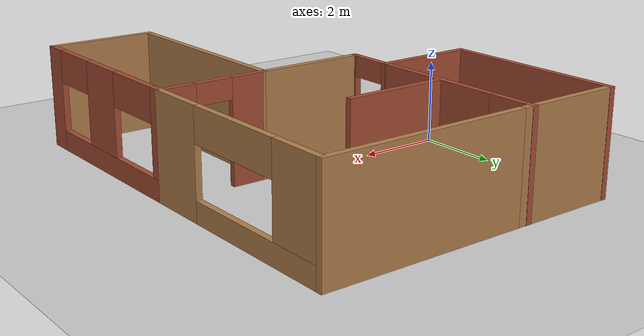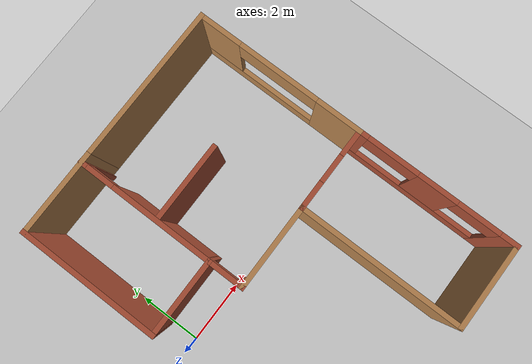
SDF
<sdf version="1.7">
 <world name="default">
  <model name="ground_plane">
   <static>1</static>
   <link name="link">
    <collision name="collision">
     <geometry><plane><normal>0 0 1</normal><size>100 100</size></plane></geometry>
     <surface>
      <contact><collide_bitmask>65535</collide_bitmask></contact>
      <friction><ode><mu>100</mu><mu2>50</mu2></ode></friction>
     </surface>
    </collision>
    <visual name="visual">
     <cast_shadows>0</cast_shadows>
     <geometry><plane><normal>0 0 1</normal><size>100 100</size></plane></geometry>
     <material>
      <script><uri>file://media/materials/scripts/gazebo.material</uri><name>Gazebo/Grey</name></script>
     </material>
    </visual>
   </link>
  </model>
  <model name="turtlebot3_house">
   <link name="Wall_101">
    <pose>-0.05 3.1 0 0 0 -1.5708</pose>
    <visual name="Wall_101_Visual">
     <pose>0 0 1.25 0 -0 0</pose>
     <geometry><box><size>4.5 0.15 2.5</size></box></geometry>
     <material>
      <script><uri>file://media/materials/scripts/gazebo.material</uri><name>Gazebo/Bricks</name></script>
      <ambient>1 1 1 1</ambient>
      <diffuse>1 1 1 1</diffuse>
      <specular>0.2 0.2 0.2 1</specular>
      <emissive>0 0 0 1</emissive>
     </material>
    </visual>
    <collision name="Wall_101_Collision">
     <pose>0 0 1.25 0 -0 0</pose>
     <geometry><box><size>4.5 0.15 2.5</size></box></geometry>
     <surface>
      <friction>
       <ode><mu>1</mu><mu2>1</mu2><fdir1>0 0 0</fdir1><slip1>0</slip1><slip2>0</slip2></ode>
       <torsional>
        <coefficient>1</coefficient>
        <patch_radius>0</patch_radius>
        <surface_radius>0</surface_radius>
        <use_patch_radius>1</use_patch_radius>
        <ode><slip>0</slip></ode>
       </torsional>
      </friction>
      <bounce><restitution_coefficient>0</restitution_coefficient><threshold>1e+06</threshold></bounce>
      <contact>
       <collide_without_contact>0</collide_without_contact>
       <collide_without_contact_bitmask>1</collide_without_contact_bitmask>
       <collide_bitmask>1</collide_bitmask>
       <ode>
        <soft_cfm>0</soft_cfm>
        <soft_erp>0.2</soft_erp>
        <kp>1e+13</kp>
        <kd>1</kd>
        <max_vel>0.01</max_vel>
        <min_depth>0</min_depth>
       </ode>
       <bullet>
        <split_impulse>1</split_impulse>
        <split_impulse_penetration_threshold>-0.01</split_impulse_penetration_threshold>
        <soft_cfm>0</soft_cfm>
        <soft_erp>0.2</soft_erp>
        <kp>1e+13</kp>
        <kd>1</kd>
       </bullet>
      </contact>
     </surface>
    </collision>
   </link>
   <link name="Wall_104">
    <pose>2.3 3.1 0 0 -0 1.5708</pose>
    <visual name="Wall_104_Visual_1">
     <pose>2.11625 0 1.25 0 -0 0</pose>
     <geometry><box><size>0.267504 0.15 2.5</size></box></geometry>
     <material>
      <script><uri>file://media/materials/scripts/gazebo.material</uri><name>Gazebo/Bricks</name></script>
      <ambient>1 1 1 1</ambient>
      <diffuse>1 1 1 1</diffuse>
      <specular>0.2 0.2 0.2 1</specular>
      <emissive>0 0 0 1</emissive>
     </material>
    </visual>
    <visual name="Wall_104_Visual_2">
     <pose>1.5325 0 2.25 0 -0 0</pose>
     <geometry><box><size>0.9 0.15 0.5</size></box></geometry>
     <material>
      <script><uri>file://media/materials/scripts/gazebo.material</uri><name>Gazebo/Bricks</name></script>
      <ambient>1 1 1 1</ambient>
      <diffuse>1 1 1 1</diffuse>
      <specular>0.2 0.2 0.2 1</specular>
      <emissive>0 0 0 1</emissive>
     </material>
    </visual>
    <visual name="Wall_104_Visual_0">
     <pose>-0.583752 0 1.25 0 -0 0</pose>
     <geometry><box><size>3.3325 0.15 2.5</size></box></geometry>
     <material>
      <script><uri>file://media/materials/scripts/gazebo.material</uri><name>Gazebo/Bricks</name></script>
      <ambient>1 1 1 1</ambient>
      <diffuse>1 1 1 1</diffuse>
      <specular>0.2 0.2 0.2 1</specular>
      <emissive>0 0 0 1</emissive>
     </material>
    </visual>
    <collision name="Wall_104_Collision_1">
     <pose>2.11625 0 1.25 0 -0 0</pose>
     <geometry><box><size>0.267504 0.15 2.5</size></box></geometry>
     <surface>
      <friction>
       <ode><mu>1</mu><mu2>1</mu2><fdir1>0 0 0</fdir1><slip1>0</slip1><slip2>0</slip2></ode>
       <torsional>
        <coefficient>1</coefficient>
        <patch_radius>0</patch_radius>
        <surface_radius>0</surface_radius>
        <use_patch_radius>1</use_patch_radius>
        <ode><slip>0</slip></ode>
       </torsional>
      </friction>
      <bounce><restitution_coefficient>0</restitution_coefficient><threshold>1e+06</threshold></bounce>
      <contact>
       <collide_without_contact>0</collide_without_contact>
       <collide_without_contact_bitmask>1</collide_without_contact_bitmask>
       <collide_bitmask>1</collide_bitmask>
       <ode>
        <soft_cfm>0</soft_cfm>
        <soft_erp>0.2</soft_erp>
        <kp>1e+13</kp>
        <kd>1</kd>
        <max_vel>0.01</max_vel>
        <min_depth>0</min_depth>
       </ode>
       <bullet>
        <split_impulse>1</split_impulse>
        <split_impulse_penetration_threshold>-0.01</split_impulse_penetration_threshold>
        <soft_cfm>0</soft_cfm>
        <soft_erp>0.2</soft_erp>
        <kp>1e+13</kp>
        <kd>1</kd>
       </bullet>
      </contact>
     </surface>
    </collision>
    <collision name="Wall_104_Collision_2">
     <pose>1.5325 0 2.25 0 -0 0</pose>
     <geometry><box><size>0.9 0.15 0.5</size></box></geometry>
     <surface>
      <friction>
       <ode><mu>1</mu><mu2>1</mu2><fdir1>0 0 0</fdir1><slip1>0</slip1><slip2>0</slip2></ode>
       <torsional>
        <coefficient>1</coefficient>
        <patch_radius>0</patch_radius>
        <surface_radius>0</surface_radius>
        <use_patch_radius>1</use_patch_radius>
        <ode><slip>0</slip></ode>
       </torsional>
      </friction>
      <bounce><restitution_coefficient>0</restitution_coefficient><threshold>1e+06</threshold></bounce>
      <contact>
       <collide_without_contact>0</collide_without_contact>
       <collide_without_contact_bitmask>1</collide_without_contact_bitmask>
       <collide_bitmask>1</collide_bitmask>
       <ode>
        <soft_cfm>0</soft_cfm>
        <soft_erp>0.2</soft_erp>
        <kp>1e+13</kp>
        <kd>1</kd>
        <max_vel>0.01</max_vel>
        <min_depth>0</min_depth>
       </ode>
       <bullet>
        <split_impulse>1</split_impulse>
        <split_impulse_penetration_threshold>-0.01</split_impulse_penetration_threshold>
        <soft_cfm>0</soft_cfm>
        <soft_erp>0.2</soft_erp>
        <kp>1e+13</kp>
        <kd>1</kd>
       </bullet>
      </contact>
     </surface>
    </collision>
    <collision name="Wall_104_Collision_0">
     <pose>-0.583752 0 1.25 0 -0 0</pose>
     <geometry><box><size>3.3325 0.15 2.5</size></box></geometry>
     <surface>
      <friction>
       <ode><mu>1</mu><mu2>1</mu2><fdir1>0 0 0</fdir1><slip1>0</slip1><slip2>0</slip2></ode>
       <torsional>
        <coefficient>1</coefficient>
        <patch_radius>0</patch_radius>
        <surface_radius>0</surface_radius>
        <use_patch_radius>1</use_patch_radius>
        <ode><slip>0</slip></ode>
       </torsional>
      </friction>
      <bounce><restitution_coefficient>0</restitution_coefficient><threshold>1e+06</threshold></bounce>
      <contact>
       <collide_without_contact>0</collide_without_contact>
       <collide_without_contact_bitmask>1</collide_without_contact_bitmask>
       <collide_bitmask>1</collide_bitmask>
       <ode>
        <soft_cfm>0</soft_cfm>
        <soft_erp>0.2</soft_erp>
        <kp>1e+13</kp>
        <kd>1</kd>
        <max_vel>0.01</max_vel>
        <min_depth>0</min_depth>
       </ode>
       <bullet>
        <split_impulse>1</split_impulse>
        <split_impulse_penetration_threshold>-0.01</split_impulse_penetration_threshold>
        <soft_cfm>0</soft_cfm>
        <soft_erp>0.2</soft_erp>
        <kp>1e+13</kp>
        <kd>1</kd>
       </bullet>
      </contact>
     </surface>
    </collision>
   </link>
   <link name="Wall_106">
    <pose>6.2 -0.175 0 0 -0 0</pose>
    <visual name="Wall_106_Visual_1">
     <pose>0.922235 0 1.25 0 -0 0</pose>
     <geometry><box><size>0.905529 0.15 2.5</size></box></geometry>
     <material>
      <script><uri>file://media/materials/scripts/gazebo.material</uri><name>Gazebo/Bricks</name></script>
      <ambient>1 1 1 1</ambient>
      <diffuse>1 1 1 1</diffuse>
      <specular>0.2 0.2 0.2 1</specular>
      <emissive>0 0 0 1</emissive>
     </material>
    </visual>
    <visual name="Wall_106_Visual_2">
     <pose>0.019471 0 2.25 0 -0 0</pose>
     <geometry><box><size>0.9 0.15 0.5</size></box></geometry>
     <material>
      <script><uri>file://media/materials/scripts/gazebo.material</uri><name>Gazebo/Bricks</name></script>
      <ambient>1 1 1 1</ambient>
      <diffuse>1 1 1 1</diffuse>
      <specular>0.2 0.2 0.2 1</specular>
      <emissive>0 0 0 1</emissive>
     </material>
    </visual>
    <visual name="Wall_106_Visual_0">
     <pose>-0.902765 0 1.25 0 -0 0</pose>
     <geometry><box><size>0.944471 0.15 2.5</size></box></geometry>
     <material>
      <script><uri>file://media/materials/scripts/gazebo.material</uri><name>Gazebo/Bricks</name></script>
      <ambient>1 1 1 1</ambient>
      <diffuse>1 1 1 1</diffuse>
      <specular>0.2 0.2 0.2 1</specular>
      <emissive>0 0 0 1</emissive>
     </material>
    </visual>
    <collision name="Wall_106_Collision_1">
     <pose>0.922235 0 1.25 0 -0 0</pose>
     <geometry><box><size>0.905529 0.15 2.5</size></box></geometry>
     <surface>
      <friction>
       <ode><mu>1</mu><mu2>1</mu2><fdir1>0 0 0</fdir1><slip1>0</slip1><slip2>0</slip2></ode>
       <torsional>
        <coefficient>1</coefficient>
        <patch_radius>0</patch_radius>
        <surface_radius>0</surface_radius>
        <use_patch_radius>1</use_patch_radius>
        <ode><slip>0</slip></ode>
       </torsional>
      </friction>
      <bounce><restitution_coefficient>0</restitution_coefficient><threshold>1e+06</threshold></bounce>
      <contact>
       <collide_without_contact>0</collide_without_contact>
       <collide_without_contact_bitmask>1</collide_without_contact_bitmask>
       <collide_bitmask>1</collide_bitmask>
       <ode>
        <soft_cfm>0</soft_cfm>
        <soft_erp>0.2</soft_erp>
        <kp>1e+13</kp>
        <kd>1</kd>
        <max_vel>0.01</max_vel>
        <min_depth>0</min_depth>
       </ode>
       <bullet>
        <split_impulse>1</split_impulse>
        <split_impulse_penetration_threshold>-0.01</split_impulse_penetration_threshold>
        <soft_cfm>0</soft_cfm>
        <soft_erp>0.2</soft_erp>
        <kp>1e+13</kp>
        <kd>1</kd>
       </bullet>
      </contact>
     </surface>
    </collision>
    <collision name="Wall_106_Collision_0">
     <pose>-0.902765 0 1.25 0 -0 0</pose>
     <geometry><box><size>0.944471 0.15 2.5</size></box></geometry>
     <surface>
      <friction>
       <ode><mu>1</mu><mu2>1</mu2><fdir1>0 0 0</fdir1><slip1>0</slip1><slip2>0</slip2></ode>
       <torsional>
        <coefficient>1</coefficient>
        <patch_radius>0</patch_radius>
        <surface_radius>0</surface_radius>
        <use_patch_radius>1</use_patch_radius>
        <ode><slip>0</slip></ode>
       </torsional>
      </friction>
      <bounce><restitution_coefficient>0</restitution_coefficient><threshold>1e+06</threshold></bounce>
      <contact>
       <collide_without_contact>0</collide_without_contact>
       <collide_without_contact_bitmask>1</collide_without_contact_bitmask>
       <collide_bitmask>1</collide_bitmask>
       <ode>
        <soft_cfm>0</soft_cfm>
        <soft_erp>0.2</soft_erp>
        <kp>1e+13</kp>
        <kd>1</kd>
        <max_vel>0.01</max_vel>
        <min_depth>0</min_depth>
       </ode>
       <bullet>
        <split_impulse>1</split_impulse>
        <split_impulse_penetration_threshold>-0.01</split_impulse_penetration_threshold>
        <soft_cfm>0</soft_cfm>
        <soft_erp>0.2</soft_erp>
        <kp>1e+13</kp>
        <kd>1</kd>
       </bullet>
      </contact>
     </surface>
    </collision>
    <collision name="Wall_106_Collision_2">
     <pose>0.019471 0 2.25 0 -0 0</pose>
     <geometry><box><size>0.9 0.15 0.5</size></box></geometry>
     <surface>
      <friction>
       <ode><mu>1</mu><mu2>1</mu2><fdir1>0 0 0</fdir1><slip1>0</slip1><slip2>0</slip2></ode>
       <torsional>
        <coefficient>1</coefficient>
        <patch_radius>0</patch_radius>
        <surface_radius>0</surface_radius>
        <use_patch_radius>1</use_patch_radius>
        <ode><slip>0</slip></ode>
       </torsional>
      </friction>
      <bounce><restitution_coefficient>0</restitution_coefficient><threshold>1e+06</threshold></bounce>
      <contact>
       <collide_without_contact>0</collide_without_contact>
       <collide_without_contact_bitmask>1</collide_without_contact_bitmask>
       <collide_bitmask>1</collide_bitmask>
       <ode>
        <soft_cfm>0</soft_cfm>
        <soft_erp>0.2</soft_erp>
        <kp>1e+13</kp>
        <kd>1</kd>
        <max_vel>0.01</max_vel>
        <min_depth>0</min_depth>
       </ode>
       <bullet>
        <split_impulse>1</split_impulse>
        <split_impulse_penetration_threshold>-0.01</split_impulse_penetration_threshold>
        <soft_cfm>0</soft_cfm>
        <soft_erp>0.2</soft_erp>
        <kp>1e+13</kp>
        <kd>1</kd>
       </bullet>
      </contact>
     </surface>
    </collision>
   </link>
   <link name="Wall_110">
    <pose>3.60 2.7 0 0 -0 0</pose>
    <visual name="Wall_110_Visual">
     <pose>0 0 1.25 0 -0 0</pose>
     <geometry><box><size>2.5 0.15 2.5</size></box></geometry>
     <material>
      <script><uri>file://media/materials/scripts/gazebo.material</uri><name>Gazebo/Bricks</name></script>
      <ambient>1 1 1 1</ambient>
      <diffuse>1 1 1 1</diffuse>
      <specular>0.2 0.2 0.2 1</specular>
      <emissive>0 0 0 1</emissive>
     </material>
    </visual>
    <collision name="Wall_110_Collision">
     <pose>0 0 1.25 0 -0 0</pose>
     <geometry><box><size>2.5 0.15 2.5</size></box></geometry>
     <surface>
      <friction>
       <ode><mu>1</mu><mu2>1</mu2><fdir1>0 0 0</fdir1><slip1>0</slip1><slip2>0</slip2></ode>
       <torsional>
        <coefficient>1</coefficient>
        <patch_radius>0</patch_radius>
        <surface_radius>0</surface_radius>
        <use_patch_radius>1</use_patch_radius>
        <ode><slip>0</slip></ode>
       </torsional>
      </friction>
      <bounce><restitution_coefficient>0</restitution_coefficient><threshold>1e+06</threshold></bounce>
      <contact>
       <collide_without_contact>0</collide_without_contact>
       <collide_without_contact_bitmask>1</collide_without_contact_bitmask>
       <collide_bitmask>1</collide_bitmask>
       <ode>
        <soft_cfm>0</soft_cfm>
        <soft_erp>0.2</soft_erp>
        <kp>1e+13</kp>
        <kd>1</kd>
        <max_vel>0.01</max_vel>
        <min_depth>0</min_depth>
       </ode>
       <bullet>
        <split_impulse>1</split_impulse>
        <split_impulse_penetration_threshold>-0.01</split_impulse_penetration_threshold>
        <soft_cfm>0</soft_cfm>
        <soft_erp>0.2</soft_erp>
        <kp>1e+13</kp>
        <kd>1</kd>
       </bullet>
      </contact>
     </surface>
    </collision>
   </link>
   <link name="Wall_81">
    <pose>5.07752 5.2688 0 0 -0 3.14159</pose>
    <visual name="Wall_81_Visual">
     <pose>0 0 1.25 0 -0 0</pose>
     <geometry><box><size>5 0.15 2.5</size></box></geometry>
     <material>
      <script><uri>file://media/materials/scripts/gazebo.material</uri><name>Gazebo/Wood</name></script>
      <ambient>1 1 1 1</ambient>
      <diffuse>1 1 1 1</diffuse>
      <specular>0.2 0.2 0.2 1</specular>
      <emissive>0 0 0 1</emissive>
     </material>
    </visual>
    <collision name="Wall_81_Collision">
     <pose>0 0 1.25 0 -0 0</pose>
     <geometry><box><size>5 0.15 2.5</size></box></geometry>
     <surface>
      <friction>
       <ode><mu>1</mu><mu2>1</mu2><fdir1>0 0 0</fdir1><slip1>0</slip1><slip2>0</slip2></ode>
       <torsional>
        <coefficient>1</coefficient>
        <patch_radius>0</patch_radius>
        <surface_radius>0</surface_radius>
        <use_patch_radius>1</use_patch_radius>
        <ode><slip>0</slip></ode>
       </torsional>
      </friction>
      <bounce><restitution_coefficient>0</restitution_coefficient><threshold>1e+06</threshold></bounce>
      <contact>
       <collide_without_contact>0</collide_without_contact>
       <collide_without_contact_bitmask>1</collide_without_contact_bitmask>
       <collide_bitmask>1</collide_bitmask>
       <ode>
        <soft_cfm>0</soft_cfm>
        <soft_erp>0.2</soft_erp>
        <kp>1e+13</kp>
        <kd>1</kd>
        <max_vel>0.01</max_vel>
        <min_depth>0</min_depth>
       </ode>
       <bullet>
        <split_impulse>1</split_impulse>
        <split_impulse_penetration_threshold>-0.01</split_impulse_penetration_threshold>
        <soft_cfm>0</soft_cfm>
        <soft_erp>0.2</soft_erp>
        <kp>1e+13</kp>
        <kd>1</kd>
       </bullet>
      </contact>
     </surface>
    </collision>
   </link>
   <link name="Wall_82">
    <pose>1.25 5.26876 0 0 -0 3.14159</pose>
    <visual name="Wall_82_Visual">
     <pose>0 0 1.25 0 -0 0</pose>
     <geometry><box><size>2.75 0.15 2.5</size></box></geometry>
     <material>
      <script><uri>file://media/materials/scripts/gazebo.material</uri><name>Gazebo/Wood</name></script>
      <ambient>1 1 1 1</ambient>
      <diffuse>1 1 1 1</diffuse>
      <specular>0.2 0.2 0.2 1</specular>
      <emissive>0 0 0 1</emissive>
     </material>
    </visual>
    <collision name="Wall_82_Collision">
     <pose>0 0 1.25 0 -0 0</pose>
     <geometry><box><size>2.75 0.15 2.5</size></box></geometry>
     <surface>
      <friction>
       <ode><mu>1</mu><mu2>1</mu2><fdir1>0 0 0</fdir1><slip1>0</slip1><slip2>0</slip2></ode>
       <torsional>
        <coefficient>1</coefficient>
        <patch_radius>0</patch_radius>
        <surface_radius>0</surface_radius>
        <use_patch_radius>1</use_patch_radius>
        <ode><slip>0</slip></ode>
       </torsional>
      </friction>
      <bounce><restitution_coefficient>0</restitution_coefficient><threshold>1e+06</threshold></bounce>
      <contact>
       <collide_without_contact>0</collide_without_contact>
       <collide_without_contact_bitmask>1</collide_without_contact_bitmask>
       <collide_bitmask>1</collide_bitmask>
       <ode>
        <soft_cfm>0</soft_cfm>
        <soft_erp>0.2</soft_erp>
        <kp>1e+13</kp>
        <kd>1</kd>
        <max_vel>0.01</max_vel>
        <min_depth>0</min_depth>
       </ode>
       <bullet>
        <split_impulse>1</split_impulse>
        <split_impulse_penetration_threshold>-0.01</split_impulse_penetration_threshold>
        <soft_cfm>0</soft_cfm>
        <soft_erp>0.2</soft_erp>
        <kp>1e+13</kp>
        <kd>1</kd>
       </bullet>
      </contact>
     </surface>
    </collision>
   </link>
   <link name="Wall_90">
    <pose>1.125 0.925 0 0 -0 0</pose>
    <visual name="Wall_90_Visual">
     <pose>0 0 1.25 0 -0 0</pose>
     <geometry><box><size>2.5 0.15 2.5</size></box></geometry>
     <material>
      <script><uri>file://media/materials/scripts/gazebo.material</uri><name>Gazebo/Bricks</name></script>
      <ambient>1 1 1 1</ambient>
      <diffuse>1 1 1 1</diffuse>
      <specular>0.2 0.2 0.2 1</specular>
      <emissive>0 0 0 1</emissive>
     </material>
    </visual>
    <collision name="Wall_90_Collision">
     <pose>0 0 1.25 0 -0 0</pose>
     <geometry><box><size>2.5 0.15 2.5</size></box></geometry>
     <surface>
      <friction>
       <ode><mu>1</mu><mu2>1</mu2><fdir1>0 0 0</fdir1><slip1>0</slip1><slip2>0</slip2></ode>
       <torsional>
        <coefficient>1</coefficient>
        <patch_radius>0</patch_radius>
        <surface_radius>0</surface_radius>
        <use_patch_radius>1</use_patch_radius>
        <ode><slip>0</slip></ode>
       </torsional>
      </friction>
      <bounce><restitution_coefficient>0</restitution_coefficient><threshold>1e+06</threshold></bounce>
      <contact>
       <collide_without_contact>0</collide_without_contact>
       <collide_without_contact_bitmask>1</collide_without_contact_bitmask>
       <collide_bitmask>1</collide_bitmask>
       <ode>
        <soft_cfm>0</soft_cfm>
        <soft_erp>0.2</soft_erp>
        <kp>1e+13</kp>
        <kd>1</kd>
        <max_vel>0.01</max_vel>
        <min_depth>0</min_depth>
       </ode>
       <bullet>
        <split_impulse>1</split_impulse>
        <split_impulse_penetration_threshold>-0.01</split_impulse_penetration_threshold>
        <soft_cfm>0</soft_cfm>
        <soft_erp>0.2</soft_erp>
        <kp>1e+13</kp>
        <kd>1</kd>
       </bullet>
      </contact>
     </surface>
    </collision>
   </link>
   <link name="Wall_91">
    <pose>2.29994 0.37506 0 0 0 -1.57091</pose>
    <visual name="Wall_91_Visual_0">
     <pose>-0.551501 0 1.25 0 -0 0</pose>
     <geometry><box><size>0.146998 0.15 2.5</size></box></geometry>
     <material>
      <script><uri>file://media/materials/scripts/gazebo.material</uri><name>Gazebo/Bricks</name></script>
      <ambient>1 1 1 1</ambient>
      <diffuse>1 1 1 1</diffuse>
      <specular>0.2 0.2 0.2 1</specular>
      <emissive>0 0 0 1</emissive>
     </material>
    </visual>
    <visual name="Wall_91_Visual_2">
     <pose>-0.028002 0 2.25 0 -0 0</pose>
     <geometry><box><size>0.9 0.15 0.5</size></box></geometry>
     <material>
      <script><uri>file://media/materials/scripts/gazebo.material</uri><name>Gazebo/Bricks</name></script>
      <ambient>1 1 1 1</ambient>
      <diffuse>1 1 1 1</diffuse>
      <specular>0.2 0.2 0.2 1</specular>
      <emissive>0 0 0 1</emissive>
     </material>
    </visual>
    <visual name="Wall_91_Visual_1">
     <pose>0.523499 0 1.25 0 -0 0</pose>
     <geometry><box><size>0.203002 0.15 2.5</size></box></geometry>
     <material>
      <script><uri>file://media/materials/scripts/gazebo.material</uri><name>Gazebo/Bricks</name></script>
      <ambient>1 1 1 1</ambient>
      <diffuse>1 1 1 1</diffuse>
      <specular>0.2 0.2 0.2 1</specular>
      <emissive>0 0 0 1</emissive>
     </material>
    </visual>
    <collision name="Wall_91_Collision_0">
     <pose>-0.551501 0 1.25 0 -0 0</pose>
     <geometry><box><size>0.146998 0.15 2.5</size></box></geometry>
     <surface>
      <friction>
       <ode><mu>1</mu><mu2>1</mu2><fdir1>0 0 0</fdir1><slip1>0</slip1><slip2>0</slip2></ode>
       <torsional>
        <coefficient>1</coefficient>
        <patch_radius>0</patch_radius>
        <surface_radius>0</surface_radius>
        <use_patch_radius>1</use_patch_radius>
        <ode><slip>0</slip></ode>
       </torsional>
      </friction>
      <bounce><restitution_coefficient>0</restitution_coefficient><threshold>1e+06</threshold></bounce>
      <contact>
       <collide_without_contact>0</collide_without_contact>
       <collide_without_contact_bitmask>1</collide_without_contact_bitmask>
       <collide_bitmask>1</collide_bitmask>
       <ode>
        <soft_cfm>0</soft_cfm>
        <soft_erp>0.2</soft_erp>
        <kp>1e+13</kp>
        <kd>1</kd>
        <max_vel>0.01</max_vel>
        <min_depth>0</min_depth>
       </ode>
       <bullet>
        <split_impulse>1</split_impulse>
        <split_impulse_penetration_threshold>-0.01</split_impulse_penetration_threshold>
        <soft_cfm>0</soft_cfm>
        <soft_erp>0.2</soft_erp>
        <kp>1e+13</kp>
        <kd>1</kd>
       </bullet>
      </contact>
     </surface>
    </collision>
    <collision name="Wall_91_Collision_1">
     <pose>0.523499 0 1.25 0 -0 0</pose>
     <geometry><box><size>0.203002 0.15 2.5</size></box></geometry>
     <surface>
      <friction>
       <ode><mu>1</mu><mu2>1</mu2><fdir1>0 0 0</fdir1><slip1>0</slip1><slip2>0</slip2></ode>
       <torsional>
        <coefficient>1</coefficient>
        <patch_radius>0</patch_radius>
        <surface_radius>0</surface_radius>
        <use_patch_radius>1</use_patch_radius>
        <ode><slip>0</slip></ode>
       </torsional>
      </friction>
      <bounce><restitution_coefficient>0</restitution_coefficient><threshold>1e+06</threshold></bounce>
      <contact>
       <collide_without_contact>0</collide_without_contact>
       <collide_without_contact_bitmask>1</collide_without_contact_bitmask>
       <collide_bitmask>1</collide_bitmask>
       <ode>
        <soft_cfm>0</soft_cfm>
        <soft_erp>0.2</soft_erp>
        <kp>1e+13</kp>
        <kd>1</kd>
        <max_vel>0.01</max_vel>
        <min_depth>0</min_depth>
       </ode>
       <bullet>
        <split_impulse>1</split_impulse>
        <split_impulse_penetration_threshold>-0.01</split_impulse_penetration_threshold>
        <soft_cfm>0</soft_cfm>
        <soft_erp>0.2</soft_erp>
        <kp>1e+13</kp>
        <kd>1</kd>
       </bullet>
      </contact>
     </surface>
    </collision>
    <collision name="Wall_91_Collision_2">
     <pose>-0.028002 0 2.25 0 -0 0</pose>
     <geometry><box><size>0.9 0.15 0.5</size></box></geometry>
     <surface>
      <friction>
       <ode><mu>1</mu><mu2>1</mu2><fdir1>0 0 0</fdir1><slip1>0</slip1><slip2>0</slip2></ode>
       <torsional>
        <coefficient>1</coefficient>
        <patch_radius>0</patch_radius>
        <surface_radius>0</surface_radius>
        <use_patch_radius>1</use_patch_radius>
        <ode><slip>0</slip></ode>
       </torsional>
      </friction>
      <bounce><restitution_coefficient>0</restitution_coefficient><threshold>1e+06</threshold></bounce>
      <contact>
       <collide_without_contact>0</collide_without_contact>
       <collide_without_contact_bitmask>1</collide_without_contact_bitmask>
       <collide_bitmask>1</collide_bitmask>
       <ode>
        <soft_cfm>0</soft_cfm>
        <soft_erp>0.2</soft_erp>
        <kp>1e+13</kp>
        <kd>1</kd>
        <max_vel>0.01</max_vel>
        <min_depth>0</min_depth>
       </ode>
       <bullet>
        <split_impulse>1</split_impulse>
        <split_impulse_penetration_threshold>-0.01</split_impulse_penetration_threshold>
        <soft_cfm>0</soft_cfm>
        <soft_erp>0.2</soft_erp>
        <kp>1e+13</kp>
        <kd>1</kd>
       </bullet>
      </contact>
     </surface>
    </collision>
   </link>
   <link name="Wall_92">
    <pose>3.59994 -0.17494 0 0 0 -4.6e-05</pose>
    <visual name="Wall_92_Visual">
     <pose>0 0 1.25 0 -0 0</pose>
     <geometry><box><size>2.75 0.15 2.5</size></box></geometry>
     <material>
      <script><uri>file://media/materials/scripts/gazebo.material</uri><name>Gazebo/Wood</name></script>
      <ambient>1 1 1 1</ambient>
      <diffuse>1 1 1 1</diffuse>
      <specular>0.2 0.2 0.2 1</specular>
      <emissive>0 0 0 1</emissive>
     </material>
    </visual>
    <collision name="Wall_92_Collision">
     <pose>0 0 1.25 0 -0 0</pose>
     <geometry><box><size>2.75 0.15 2.5</size></box></geometry>
     <surface>
      <friction>
       <ode><mu>1</mu><mu2>1</mu2><fdir1>0 0 0</fdir1><slip1>0</slip1><slip2>0</slip2></ode>
       <torsional>
        <coefficient>1</coefficient>
        <patch_radius>0</patch_radius>
        <surface_radius>0</surface_radius>
        <use_patch_radius>1</use_patch_radius>
        <ode><slip>0</slip></ode>
       </torsional>
      </friction>
      <bounce><restitution_coefficient>0</restitution_coefficient><threshold>1e+06</threshold></bounce>
      <contact>
       <collide_without_contact>0</collide_without_contact>
       <collide_without_contact_bitmask>1</collide_without_contact_bitmask>
       <collide_bitmask>1</collide_bitmask>
       <ode>
        <soft_cfm>0</soft_cfm>
        <soft_erp>0.2</soft_erp>
        <kp>1e+13</kp>
        <kd>1</kd>
        <max_vel>0.01</max_vel>
        <min_depth>0</min_depth>
       </ode>
       <bullet>
        <split_impulse>1</split_impulse>
        <split_impulse_penetration_threshold>-0.01</split_impulse_penetration_threshold>
        <soft_cfm>0</soft_cfm>
        <soft_erp>0.2</soft_erp>
        <kp>1e+13</kp>
        <kd>1</kd>
       </bullet>
      </contact>
     </surface>
    </collision>
   </link>
   <link name="Wall_93">
    <pose>4.9 -2.725 0 0 0 -1.5708</pose>
    <visual name="Wall_93_Visual">
     <pose>0 0 1.25 0 -0 0</pose>
     <geometry><box><size>5.25 0.15 2.5</size></box></geometry>
     <material>
      <script><uri>file://media/materials/scripts/gazebo.material</uri><name>Gazebo/Wood</name></script>
      <ambient>1 1 1 1</ambient>
      <diffuse>1 1 1 1</diffuse>
      <specular>0.2 0.2 0.2 1</specular>
      <emissive>0 0 0 1</emissive>
     </material>
    </visual>
    <collision name="Wall_93_Collision">
     <pose>0 0 1.25 0 -0 0</pose>
     <geometry><box><size>5.25 0.15 2.5</size></box></geometry>
     <surface>
      <friction>
       <ode><mu>1</mu><mu2>1</mu2><fdir1>0 0 0</fdir1><slip1>0</slip1><slip2>0</slip2></ode>
       <torsional>
        <coefficient>1</coefficient>
        <patch_radius>0</patch_radius>
        <surface_radius>0</surface_radius>
        <use_patch_radius>1</use_patch_radius>
        <ode><slip>0</slip></ode>
       </torsional>
      </friction>
      <bounce><restitution_coefficient>0</restitution_coefficient><threshold>1e+06</threshold></bounce>
      <contact>
       <collide_without_contact>0</collide_without_contact>
       <collide_without_contact_bitmask>1</collide_without_contact_bitmask>
       <collide_bitmask>1</collide_bitmask>
       <ode>
        <soft_cfm>0</soft_cfm>
        <soft_erp>0.2</soft_erp>
        <kp>1e+13</kp>
        <kd>1</kd>
        <max_vel>0.01</max_vel>
        <min_depth>0</min_depth>
       </ode>
       <bullet>
        <split_impulse>1</split_impulse>
        <split_impulse_penetration_threshold>-0.01</split_impulse_penetration_threshold>
        <soft_cfm>0</soft_cfm>
        <soft_erp>0.2</soft_erp>
        <kp>1e+13</kp>
        <kd>1</kd>
       </bullet>
      </contact>
     </surface>
    </collision>
   </link>
   <link name="Wall_94">
    <pose>6.2 -5.275 0 0 -0 0</pose>
    <visual name="Wall_94_Visual">
     <pose>0 0 1.25 0 -0 0</pose>
     <geometry><box><size>2.75 0.15 2.5</size></box></geometry>
     <material>
      <script><uri>file://media/materials/scripts/gazebo.material</uri><name>Gazebo/Wood</name></script>
      <ambient>1 1 1 1</ambient>
      <diffuse>1 1 1 1</diffuse>
      <specular>0.2 0.2 0.2 1</specular>
      <emissive>0 0 0 1</emissive>
     </material>
    </visual>
    <collision name="Wall_94_Collision">
     <pose>0 0 1.25 0 -0 0</pose>
     <geometry><box><size>2.75 0.15 2.5</size></box></geometry>
     <surface>
      <friction>
       <ode><mu>1</mu><mu2>1</mu2><fdir1>0 0 0</fdir1><slip1>0</slip1><slip2>0</slip2></ode>
       <torsional>
        <coefficient>1</coefficient>
        <patch_radius>0</patch_radius>
        <surface_radius>0</surface_radius>
        <use_patch_radius>1</use_patch_radius>
        <ode><slip>0</slip></ode>
       </torsional>
      </friction>
      <bounce><restitution_coefficient>0</restitution_coefficient><threshold>1e+06</threshold></bounce>
      <contact>
       <collide_without_contact>0</collide_without_contact>
       <collide_without_contact_bitmask>1</collide_without_contact_bitmask>
       <collide_bitmask>1</collide_bitmask>
       <ode>
        <soft_cfm>0</soft_cfm>
        <soft_erp>0.2</soft_erp>
        <kp>1e+13</kp>
        <kd>1</kd>
        <max_vel>0.01</max_vel>
        <min_depth>0</min_depth>
       </ode>
       <bullet>
        <split_impulse>1</split_impulse>
        <split_impulse_penetration_threshold>-0.01</split_impulse_penetration_threshold>
        <soft_cfm>0</soft_cfm>
        <soft_erp>0.2</soft_erp>
        <kp>1e+13</kp>
        <kd>1</kd>
       </bullet>
      </contact>
     </surface>
    </collision>
   </link>
   <link name="Wall_95">
    <pose>7.5 -2.725 0 0 -0 1.5708</pose>
    <visual name="Wall_95_Visual_1">
     <pose>0.295715 0 0.25 0 -0 0</pose>
     <geometry><box><size>4.65857 0.15 0.5</size></box></geometry>
     <material>
      <script><uri>file://media/materials/scripts/gazebo.material</uri><name>Gazebo/Bricks</name></script>
      <ambient>1 1 1 1</ambient>
      <diffuse>1 1 1 1</diffuse>
      <specular>0.2 0.2 0.2 1</specular>
      <emissive>0 0 0 1</emissive>
     </material>
    </visual>
    <visual name="Wall_95_Visual_2">
     <pose>-0.036959 0 1.5 0 -0 0</pose>
     <geometry><box><size>1.27522 0.15 2</size></box></geometry>
     <material>
      <script><uri>file://media/materials/scripts/gazebo.material</uri><name>Gazebo/Bricks</name></script>
      <ambient>1 1 1 1</ambient>
      <diffuse>1 1 1 1</diffuse>
      <specular>0.2 0.2 0.2 1</specular>
      <emissive>0 0 0 1</emissive>
     </material>
    </visual>
    <visual name="Wall_95_Visual_3">
     <pose>2.43783 0 1.5 0 -0 0</pose>
     <geometry><box><size>0.374348 0.15 2</size></box></geometry>
     <material>
      <script><uri>file://media/materials/scripts/gazebo.material</uri><name>Gazebo/Bricks</name></script>
      <ambient>1 1 1 1</ambient>
      <diffuse>1 1 1 1</diffuse>
      <specular>0.2 0.2 0.2 1</specular>
      <emissive>0 0 0 1</emissive>
     </material>
    </visual>
    <visual name="Wall_95_Visual_5">
     <pose>1.42565 0 2.1 0 -0 0</pose>
     <geometry><box><size>1.65 0.15 0.8</size></box></geometry>
     <material>
      <script><uri>file://media/materials/scripts/gazebo.material</uri><name>Gazebo/Bricks</name></script>
      <ambient>1 1 1 1</ambient>
      <diffuse>1 1 1 1</diffuse>
      <specular>0.2 0.2 0.2 1</specular>
      <emissive>0 0 0 1</emissive>
     </material>
    </visual>
    <visual name="Wall_95_Visual_4">
     <pose>-1.35407 0 2.1 0 -0 0</pose>
     <geometry><box><size>1.359 0.15 0.8</size></box></geometry>
     <material>
      <script><uri>file://media/materials/scripts/gazebo.material</uri><name>Gazebo/Bricks</name></script>
      <ambient>1 1 1 1</ambient>
      <diffuse>1 1 1 1</diffuse>
      <specular>0.2 0.2 0.2 1</specular>
      <emissive>0 0 0 1</emissive>
     </material>
    </visual>
    <visual name="Wall_95_Visual_0">
     <pose>-2.32929 0 1.25 0 -0 0</pose>
     <geometry><box><size>0.591431 0.15 2.5</size></box></geometry>
     <material>
      <script><uri>file://media/materials/scripts/gazebo.material</uri><name>Gazebo/Bricks</name></script>
      <ambient>1 1 1 1</ambient>
      <diffuse>1 1 1 1</diffuse>
      <specular>0.2 0.2 0.2 1</specular>
      <emissive>0 0 0 1</emissive>
     </material>
    </visual>
    <collision name="Wall_95_Collision_2">
     <pose>-0.036959 0 1.5 0 -0 0</pose>
     <geometry><box><size>1.27522 0.15 2</size></box></geometry>
     <surface>
      <friction>
       <ode><mu>1</mu><mu2>1</mu2><fdir1>0 0 0</fdir1><slip1>0</slip1><slip2>0</slip2></ode>
       <torsional>
        <coefficient>1</coefficient>
        <patch_radius>0</patch_radius>
        <surface_radius>0</surface_radius>
        <use_patch_radius>1</use_patch_radius>
        <ode><slip>0</slip></ode>
       </torsional>
      </friction>
      <bounce><restitution_coefficient>0</restitution_coefficient><threshold>1e+06</threshold></bounce>
      <contact>
       <collide_without_contact>0</collide_without_contact>
       <collide_without_contact_bitmask>1</collide_without_contact_bitmask>
       <collide_bitmask>1</collide_bitmask>
       <ode>
        <soft_cfm>0</soft_cfm>
        <soft_erp>0.2</soft_erp>
        <kp>1e+13</kp>
        <kd>1</kd>
        <max_vel>0.01</max_vel>
        <min_depth>0</min_depth>
       </ode>
       <bullet>
        <split_impulse>1</split_impulse>
        <split_impulse_penetration_threshold>-0.01</split_impulse_penetration_threshold>
        <soft_cfm>0</soft_cfm>
        <soft_erp>0.2</soft_erp>
        <kp>1e+13</kp>
        <kd>1</kd>
       </bullet>
      </contact>
     </surface>
    </collision>
    <collision name="Wall_95_Collision_3">
     <pose>2.43783 0 1.5 0 -0 0</pose>
     <geometry><box><size>0.374348 0.15 2</size></box></geometry>
     <surface>
      <friction>
       <ode><mu>1</mu><mu2>1</mu2><fdir1>0 0 0</fdir1><slip1>0</slip1><slip2>0</slip2></ode>
       <torsional>
        <coefficient>1</coefficient>
        <patch_radius>0</patch_radius>
        <surface_radius>0</surface_radius>
        <use_patch_radius>1</use_patch_radius>
        <ode><slip>0</slip></ode>
       </torsional>
      </friction>
      <bounce><restitution_coefficient>0</restitution_coefficient><threshold>1e+06</threshold></bounce>
      <contact>
       <collide_without_contact>0</collide_without_contact>
       <collide_without_contact_bitmask>1</collide_without_contact_bitmask>
       <collide_bitmask>1</collide_bitmask>
       <ode>
        <soft_cfm>0</soft_cfm>
        <soft_erp>0.2</soft_erp>
        <kp>1e+13</kp>
        <kd>1</kd>
        <max_vel>0.01</max_vel>
        <min_depth>0</min_depth>
       </ode>
       <bullet>
        <split_impulse>1</split_impulse>
        <split_impulse_penetration_threshold>-0.01</split_impulse_penetration_threshold>
        <soft_cfm>0</soft_cfm>
        <soft_erp>0.2</soft_erp>
        <kp>1e+13</kp>
        <kd>1</kd>
       </bullet>
      </contact>
     </surface>
    </collision>
    <collision name="Wall_95_Collision_5">
     <pose>1.42565 0 2.1 0 -0 0</pose>
     <geometry><box><size>1.65 0.15 0.8</size></box></geometry>
     <surface>
      <friction>
       <ode><mu>1</mu><mu2>1</mu2><fdir1>0 0 0</fdir1><slip1>0</slip1><slip2>0</slip2></ode>
       <torsional>
        <coefficient>1</coefficient>
        <patch_radius>0</patch_radius>
        <surface_radius>0</surface_radius>
        <use_patch_radius>1</use_patch_radius>
        <ode><slip>0</slip></ode>
       </torsional>
      </friction>
      <bounce><restitution_coefficient>0</restitution_coefficient><threshold>1e+06</threshold></bounce>
      <contact>
       <collide_without_contact>0</collide_without_contact>
       <collide_without_contact_bitmask>1</collide_without_contact_bitmask>
       <collide_bitmask>1</collide_bitmask>
       <ode>
        <soft_cfm>0</soft_cfm>
        <soft_erp>0.2</soft_erp>
        <kp>1e+13</kp>
        <kd>1</kd>
        <max_vel>0.01</max_vel>
        <min_depth>0</min_depth>
       </ode>
       <bullet>
        <split_impulse>1</split_impulse>
        <split_impulse_penetration_threshold>-0.01</split_impulse_penetration_threshold>
        <soft_cfm>0</soft_cfm>
        <soft_erp>0.2</soft_erp>
        <kp>1e+13</kp>
        <kd>1</kd>
       </bullet>
      </contact>
     </surface>
    </collision>
    <collision name="Wall_95_Collision_0">
     <pose>-2.32929 0 1.25 0 -0 0</pose>
     <geometry><box><size>0.591431 0.15 2.5</size></box></geometry>
     <surface>
      <friction>
       <ode><mu>1</mu><mu2>1</mu2><fdir1>0 0 0</fdir1><slip1>0</slip1><slip2>0</slip2></ode>
       <torsional>
        <coefficient>1</coefficient>
        <patch_radius>0</patch_radius>
        <surface_radius>0</surface_radius>
        <use_patch_radius>1</use_patch_radius>
        <ode><slip>0</slip></ode>
       </torsional>
      </friction>
      <bounce><restitution_coefficient>0</restitution_coefficient><threshold>1e+06</threshold></bounce>
      <contact>
       <collide_without_contact>0</collide_without_contact>
       <collide_without_contact_bitmask>1</collide_without_contact_bitmask>
       <collide_bitmask>1</collide_bitmask>
       <ode>
        <soft_cfm>0</soft_cfm>
        <soft_erp>0.2</soft_erp>
        <kp>1e+13</kp>
        <kd>1</kd>
        <max_vel>0.01</max_vel>
        <min_depth>0</min_depth>
       </ode>
       <bullet>
        <split_impulse>1</split_impulse>
        <split_impulse_penetration_threshold>-0.01</split_impulse_penetration_threshold>
        <soft_cfm>0</soft_cfm>
        <soft_erp>0.2</soft_erp>
        <kp>1e+13</kp>
        <kd>1</kd>
       </bullet>
      </contact>
     </surface>
    </collision>
    <collision name="Wall_95_Collision_1">
     <pose>0.295715 0 0.25 0 -0 0</pose>
     <geometry><box><size>4.65857 0.15 0.5</size></box></geometry>
     <surface>
      <friction>
       <ode><mu>1</mu><mu2>1</mu2><fdir1>0 0 0</fdir1><slip1>0</slip1><slip2>0</slip2></ode>
       <torsional>
        <coefficient>1</coefficient>
        <patch_radius>0</patch_radius>
        <surface_radius>0</surface_radius>
        <use_patch_radius>1</use_patch_radius>
        <ode><slip>0</slip></ode>
       </torsional>
      </friction>
      <bounce><restitution_coefficient>0</restitution_coefficient><threshold>1e+06</threshold></bounce>
      <contact>
       <collide_without_contact>0</collide_without_contact>
       <collide_without_contact_bitmask>1</collide_without_contact_bitmask>
       <collide_bitmask>1</collide_bitmask>
       <ode>
        <soft_cfm>0</soft_cfm>
        <soft_erp>0.2</soft_erp>
        <kp>1e+13</kp>
        <kd>1</kd>
        <max_vel>0.01</max_vel>
        <min_depth>0</min_depth>
       </ode>
       <bullet>
        <split_impulse>1</split_impulse>
        <split_impulse_penetration_threshold>-0.01</split_impulse_penetration_threshold>
        <soft_cfm>0</soft_cfm>
        <soft_erp>0.2</soft_erp>
        <kp>1e+13</kp>
        <kd>1</kd>
       </bullet>
      </contact>
     </surface>
    </collision>
    <collision name="Wall_95_Collision_4">
     <pose>-1.35407 0 2.1 0 -0 0</pose>
     <geometry><box><size>1.359 0.15 0.8</size></box></geometry>
     <surface>
      <friction>
       <ode><mu>1</mu><mu2>1</mu2><fdir1>0 0 0</fdir1><slip1>0</slip1><slip2>0</slip2></ode>
       <torsional>
        <coefficient>1</coefficient>
        <patch_radius>0</patch_radius>
        <surface_radius>0</surface_radius>
        <use_patch_radius>1</use_patch_radius>
        <ode><slip>0</slip></ode>
       </torsional>
      </friction>
      <bounce><restitution_coefficient>0</restitution_coefficient><threshold>1e+06</threshold></bounce>
      <contact>
       <collide_without_contact>0</collide_without_contact>
       <collide_without_contact_bitmask>1</collide_without_contact_bitmask>
       <collide_bitmask>1</collide_bitmask>
       <ode>
        <soft_cfm>0</soft_cfm>
        <soft_erp>0.2</soft_erp>
        <kp>1e+13</kp>
        <kd>1</kd>
        <max_vel>0.01</max_vel>
        <min_depth>0</min_depth>
       </ode>
       <bullet>
        <split_impulse>1</split_impulse>
        <split_impulse_penetration_threshold>-0.01</split_impulse_penetration_threshold>
        <soft_cfm>0</soft_cfm>
        <soft_erp>0.2</soft_erp>
        <kp>1e+13</kp>
        <kd>1</kd>
       </bullet>
      </contact>
     </surface>
    </collision>
   </link>
   <link name="Wall_96">
    <pose>7.5 2.5 0 0 -0 1.5708</pose>
    <visual name="Wall_96_Visual_1">
     <pose>0.75174 0 0.25 0 -0 0</pose>
     <geometry><box><size>3.99652 0.15 0.5</size></box></geometry>
     <material>
      <script><uri>file://media/materials/scripts/gazebo.material</uri><name>Gazebo/Wood</name></script>
      <ambient>1 1 1 1</ambient>
      <diffuse>1 1 1 1</diffuse>
      <specular>0.2 0.2 0.2 1</specular>
      <emissive>0 0 0 1</emissive>
     </material>
    </visual>
    <visual name="Wall_96_Visual_2">
     <pose>2.06924 0 1.5 0 -0 0</pose>
     <geometry><box><size>1.36152 0.15 2</size></box></geometry>
     <material>
      <script><uri>file://media/materials/scripts/gazebo.material</uri><name>Gazebo/Wood</name></script>
      <ambient>1 1 1 1</ambient>
      <diffuse>1 1 1 1</diffuse>
      <specular>0.2 0.2 0.2 1</specular>
      <emissive>0 0 0 1</emissive>
     </material>
    </visual>
    <visual name="Wall_96_Visual_3">
     <pose>0.070981 0 2.1 0 -0 0</pose>
     <geometry><box><size>2.635 0.15 0.8</size></box></geometry>
     <material>
      <script><uri>file://media/materials/scripts/gazebo.material</uri><name>Gazebo/Wood</name></script>
      <ambient>1 1 1 1</ambient>
      <diffuse>1 1 1 1</diffuse>
      <specular>0.2 0.2 0.2 1</specular>
      <emissive>0 0 0 1</emissive>
     </material>
    </visual>
    <visual name="Wall_96_Visual_0">
     <pose>-1.99826 0 1.25 0 -0 0</pose>
     <geometry><box><size>1.50348 0.15 2.5</size></box></geometry>
     <material>
      <script><uri>file://media/materials/scripts/gazebo.material</uri><name>Gazebo/Wood</name></script>
      <ambient>1 1 1 1</ambient>
      <diffuse>1 1 1 1</diffuse>
      <specular>0.2 0.2 0.2 1</specular>
      <emissive>0 0 0 1</emissive>
     </material>
    </visual>
    <collision name="Wall_96_Collision_2">
     <pose>2.06924 0 1.5 0 -0 0</pose>
     <geometry><box><size>1.36152 0.15 2</size></box></geometry>
     <surface>
      <friction>
       <ode><mu>1</mu><mu2>1</mu2><fdir1>0 0 0</fdir1><slip1>0</slip1><slip2>0</slip2></ode>
       <torsional>
        <coefficient>1</coefficient>
        <patch_radius>0</patch_radius>
        <surface_radius>0</surface_radius>
        <use_patch_radius>1</use_patch_radius>
        <ode><slip>0</slip></ode>
       </torsional>
      </friction>
      <bounce><restitution_coefficient>0</restitution_coefficient><threshold>1e+06</threshold></bounce>
      <contact>
       <collide_without_contact>0</collide_without_contact>
       <collide_without_contact_bitmask>1</collide_without_contact_bitmask>
       <collide_bitmask>1</collide_bitmask>
       <ode>
        <soft_cfm>0</soft_cfm>
        <soft_erp>0.2</soft_erp>
        <kp>1e+13</kp>
        <kd>1</kd>
        <max_vel>0.01</max_vel>
        <min_depth>0</min_depth>
       </ode>
       <bullet>
        <split_impulse>1</split_impulse>
        <split_impulse_penetration_threshold>-0.01</split_impulse_penetration_threshold>
        <soft_cfm>0</soft_cfm>
        <soft_erp>0.2</soft_erp>
        <kp>1e+13</kp>
        <kd>1</kd>
       </bullet>
      </contact>
     </surface>
    </collision>
    <collision name="Wall_96_Collision_0">
     <pose>-1.99826 0 1.25 0 -0 0</pose>
     <geometry><box><size>1.50348 0.15 2.5</size></box></geometry>
     <surface>
      <friction>
       <ode><mu>1</mu><mu2>1</mu2><fdir1>0 0 0</fdir1><slip1>0</slip1><slip2>0</slip2></ode>
       <torsional>
        <coefficient>1</coefficient>
        <patch_radius>0</patch_radius>
        <surface_radius>0</surface_radius>
        <use_patch_radius>1</use_patch_radius>
        <ode><slip>0</slip></ode>
       </torsional>
      </friction>
      <bounce><restitution_coefficient>0</restitution_coefficient><threshold>1e+06</threshold></bounce>
      <contact>
       <collide_without_contact>0</collide_without_contact>
       <collide_without_contact_bitmask>1</collide_without_contact_bitmask>
       <collide_bitmask>1</collide_bitmask>
       <ode>
        <soft_cfm>0</soft_cfm>
        <soft_erp>0.2</soft_erp>
        <kp>1e+13</kp>
        <kd>1</kd>
        <max_vel>0.01</max_vel>
        <min_depth>0</min_depth>
       </ode>
       <bullet>
        <split_impulse>1</split_impulse>
        <split_impulse_penetration_threshold>-0.01</split_impulse_penetration_threshold>
        <soft_cfm>0</soft_cfm>
        <soft_erp>0.2</soft_erp>
        <kp>1e+13</kp>
        <kd>1</kd>
       </bullet>
      </contact>
     </surface>
    </collision>
    <collision name="Wall_96_Collision_3">
     <pose>0.070981 0 2.1 0 -0 0</pose>
     <geometry><box><size>2.635 0.15 0.8</size></box></geometry>
     <surface>
      <friction>
       <ode><mu>1</mu><mu2>1</mu2><fdir1>0 0 0</fdir1><slip1>0</slip1><slip2>0</slip2></ode>
       <torsional>
        <coefficient>1</coefficient>
        <patch_radius>0</patch_radius>
        <surface_radius>0</surface_radius>
        <use_patch_radius>1</use_patch_radius>
        <ode><slip>0</slip></ode>
       </torsional>
      </friction>
      <bounce><restitution_coefficient>0</restitution_coefficient><threshold>1e+06</threshold></bounce>
      <contact>
       <collide_without_contact>0</collide_without_contact>
       <collide_without_contact_bitmask>1</collide_without_contact_bitmask>
       <collide_bitmask>1</collide_bitmask>
       <ode>
        <soft_cfm>0</soft_cfm>
        <soft_erp>0.2</soft_erp>
        <kp>1e+13</kp>
        <kd>1</kd>
        <max_vel>0.01</max_vel>
        <min_depth>0</min_depth>
       </ode>
       <bullet>
        <split_impulse>1</split_impulse>
        <split_impulse_penetration_threshold>-0.01</split_impulse_penetration_threshold>
        <soft_cfm>0</soft_cfm>
        <soft_erp>0.2</soft_erp>
        <kp>1e+13</kp>
        <kd>1</kd>
       </bullet>
      </contact>
     </surface>
    </collision>
    <collision name="Wall_96_Collision_1">
     <pose>0.75174 0 0.25 0 -0 0</pose>
     <geometry><box><size>3.99652 0.15 0.5</size></box></geometry>
     <surface>
      <friction>
       <ode><mu>1</mu><mu2>1</mu2><fdir1>0 0 0</fdir1><slip1>0</slip1><slip2>0</slip2></ode>
       <torsional>
        <coefficient>1</coefficient>
        <patch_radius>0</patch_radius>
        <surface_radius>0</surface_radius>
        <use_patch_radius>1</use_patch_radius>
        <ode><slip>0</slip></ode>
       </torsional>
      </friction>
      <bounce><restitution_coefficient>0</restitution_coefficient><threshold>1e+06</threshold></bounce>
      <contact>
       <collide_without_contact>0</collide_without_contact>
       <collide_without_contact_bitmask>1</collide_without_contact_bitmask>
       <collide_bitmask>1</collide_bitmask>
       <ode>
        <soft_cfm>0</soft_cfm>
        <soft_erp>0.2</soft_erp>
        <kp>1e+13</kp>
        <kd>1</kd>
        <max_vel>0.01</max_vel>
        <min_depth>0</min_depth>
       </ode>
       <bullet>
        <split_impulse>1</split_impulse>
        <split_impulse_penetration_threshold>-0.01</split_impulse_penetration_threshold>
        <soft_cfm>0</soft_cfm>
        <soft_erp>0.2</soft_erp>
        <kp>1e+13</kp>
        <kd>1</kd>
       </bullet>
      </contact>
     </surface>
    </collision>
   </link>
   <static>1</static>
  </model>
 </world>
</sdf>
